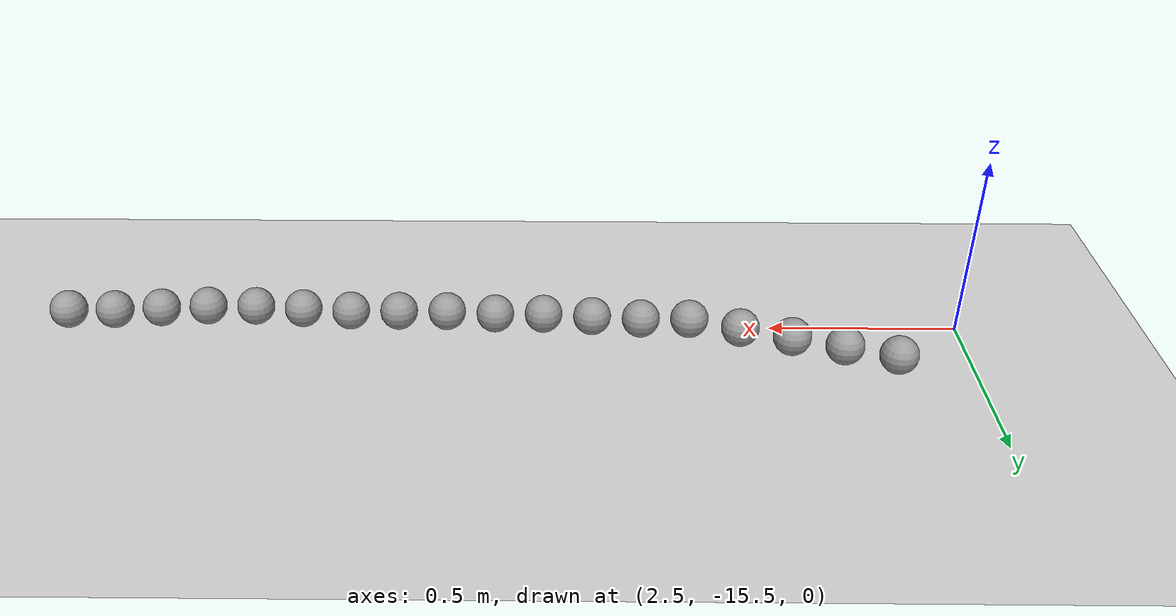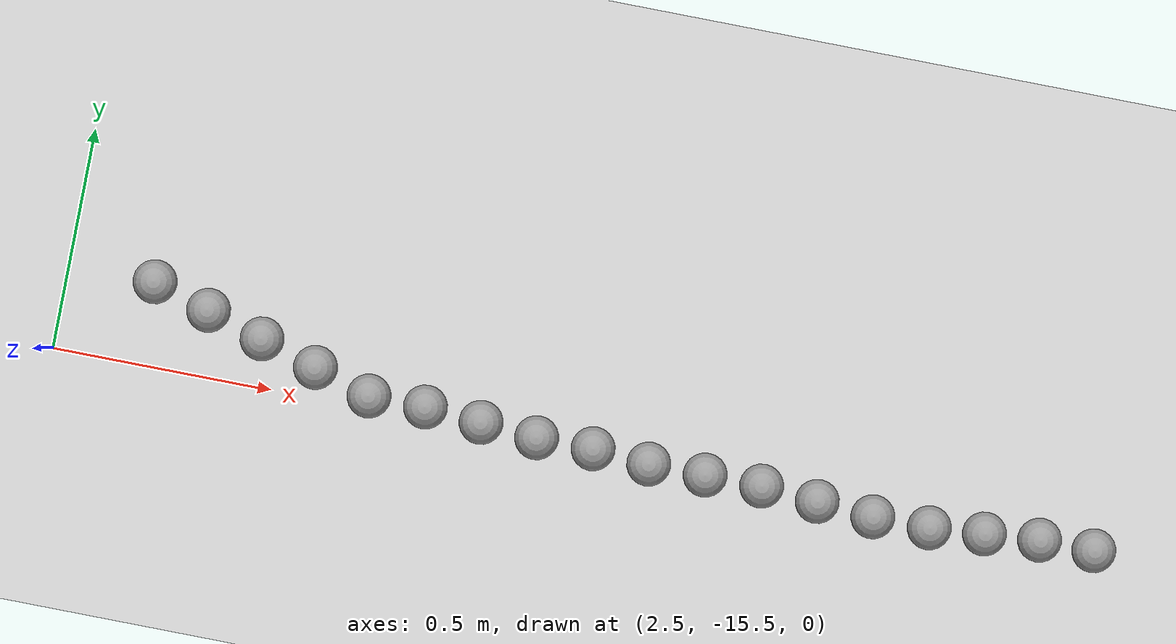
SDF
<sdf version="1.6">
 <world name="default">
  <model name="ground_plane">
   <static>1</static>
   <link name="link">
    <collision name="collision">
     <geometry><plane><normal>0 0 1</normal><size>100 100</size></plane></geometry>
     <surface><friction><ode><mu>100</mu><mu2>50</mu2></ode></friction></surface>
    </collision>
    <visual name="visual">
     <cast_shadows>0</cast_shadows>
     <geometry><plane><normal>0 0 1</normal><size>100 100</size></plane></geometry>
     <material>
      <script><uri>file://media/materials/scripts/gazebo.material</uri><name>Gazebo/Grey</name></script>
     </material>
    </visual>
   </link>
  </model>
  <model name="unit_sphere_0_557">
   <pose>4.882000 -15.500000 0.050000 0 -0 0</pose>
   <link name="link">
    <inertial>
     <mass>1</mass>
     <inertia><ixx>0.1</ixx><ixy>0</ixy><ixz>0</ixz><iyy>0.1</iyy><iyz>0</iyz><izz>0.1</izz></inertia>
    </inertial>
    <collision name="collision"><geometry><sphere><radius>0.050000</radius></sphere></geometry></collision>
    <visual name="visual">
     <geometry><sphere><radius>0.050000</radius></sphere></geometry>
     <material>
      <script><name>Gazebo/Grey</name><uri>file://media/materials/scripts/gazebo.material</uri></script>
     </material>
    </visual>
   </link>
  </model>
  <model name="unit_sphere_0_558">
   <pose>4.758000 -15.500000 0.050000 0 -0 0</pose>
   <link name="link">
    <inertial>
     <mass>1</mass>
     <inertia><ixx>0.1</ixx><ixy>0</ixy><ixz>0</ixz><iyy>0.1</iyy><iyz>0</iyz><izz>0.1</izz></inertia>
    </inertial>
    <collision name="collision"><geometry><sphere><radius>0.050000</radius></sphere></geometry></collision>
    <visual name="visual">
     <geometry><sphere><radius>0.050000</radius></sphere></geometry>
     <material>
      <script><name>Gazebo/Grey</name><uri>file://media/materials/scripts/gazebo.material</uri></script>
     </material>
    </visual>
   </link>
  </model>
  <model name="unit_sphere_0_559">
   <pose>4.634000 -15.510000 0.050000 0 -0 0</pose>
   <link name="link">
    <inertial>
     <mass>1</mass>
     <inertia><ixx>0.1</ixx><ixy>0</ixy><ixz>0</ixz><iyy>0.1</iyy><iyz>0</iyz><izz>0.1</izz></inertia>
    </inertial>
    <collision name="collision"><geometry><sphere><radius>0.050000</radius></sphere></geometry></collision>
    <visual name="visual">
     <geometry><sphere><radius>0.050000</radius></sphere></geometry>
     <material>
      <script><name>Gazebo/Grey</name><uri>file://media/materials/scripts/gazebo.material</uri></script>
     </material>
    </visual>
   </link>
  </model>
  <model name="unit_sphere_0_560">
   <pose>4.510000 -15.520000 0.050000 0 -0 0</pose>
   <link name="link">
    <inertial>
     <mass>1</mass>
     <inertia><ixx>0.1</ixx><ixy>0</ixy><ixz>0</ixz><iyy>0.1</iyy><iyz>0</iyz><izz>0.1</izz></inertia>
    </inertial>
    <collision name="collision"><geometry><sphere><radius>0.050000</radius></sphere></geometry></collision>
    <visual name="visual">
     <geometry><sphere><radius>0.050000</radius></sphere></geometry>
     <material>
      <script><name>Gazebo/Grey</name><uri>file://media/materials/scripts/gazebo.material</uri></script>
     </material>
    </visual>
   </link>
  </model>
  <model name="unit_sphere_0_561">
   <pose>4.381000 -15.520000 0.050000 0 -0 0</pose>
   <link name="link">
    <inertial>
     <mass>1</mass>
     <inertia><ixx>0.1</ixx><ixy>0</ixy><ixz>0</ixz><iyy>0.1</iyy><iyz>0</iyz><izz>0.1</izz></inertia>
    </inertial>
    <collision name="collision"><geometry><sphere><radius>0.050000</radius></sphere></geometry></collision>
    <visual name="visual">
     <geometry><sphere><radius>0.050000</radius></sphere></geometry>
     <material>
      <script><name>Gazebo/Grey</name><uri>file://media/materials/scripts/gazebo.material</uri></script>
     </material>
    </visual>
   </link>
  </model>
  <model name="unit_sphere_0_562">
   <pose>4.252000 -15.510000 0.050000 0 -0 0</pose>
   <link name="link">
    <inertial>
     <mass>1</mass>
     <inertia><ixx>0.1</ixx><ixy>0</ixy><ixz>0</ixz><iyy>0.1</iyy><iyz>0</iyz><izz>0.1</izz></inertia>
    </inertial>
    <collision name="collision"><geometry><sphere><radius>0.050000</radius></sphere></geometry></collision>
    <visual name="visual">
     <geometry><sphere><radius>0.050000</radius></sphere></geometry>
     <material>
      <script><name>Gazebo/Grey</name><uri>file://media/materials/scripts/gazebo.material</uri></script>
     </material>
    </visual>
   </link>
  </model>
  <model name="unit_sphere_0_563">
   <pose>4.123000 -15.500000 0.050000 0 -0 0</pose>
   <link name="link">
    <inertial>
     <mass>1</mass>
     <inertia><ixx>0.1</ixx><ixy>0</ixy><ixz>0</ixz><iyy>0.1</iyy><iyz>0</iyz><izz>0.1</izz></inertia>
    </inertial>
    <collision name="collision"><geometry><sphere><radius>0.050000</radius></sphere></geometry></collision>
    <visual name="visual">
     <geometry><sphere><radius>0.050000</radius></sphere></geometry>
     <material>
      <script><name>Gazebo/Grey</name><uri>file://media/materials/scripts/gazebo.material</uri></script>
     </material>
    </visual>
   </link>
  </model>
  <model name="unit_sphere_0_564">
   <pose>3.994000 -15.500000 0.050000 0 -0 0</pose>
   <link name="link">
    <inertial>
     <mass>1</mass>
     <inertia><ixx>0.1</ixx><ixy>0</ixy><ixz>0</ixz><iyy>0.1</iyy><iyz>0</iyz><izz>0.1</izz></inertia>
    </inertial>
    <collision name="collision"><geometry><sphere><radius>0.050000</radius></sphere></geometry></collision>
    <visual name="visual">
     <geometry><sphere><radius>0.050000</radius></sphere></geometry>
     <material>
      <script><name>Gazebo/Grey</name><uri>file://media/materials/scripts/gazebo.material</uri></script>
     </material>
    </visual>
   </link>
  </model>
  <model name="unit_sphere_0_565">
   <pose>3.865000 -15.500000 0.050000 0 -0 0</pose>
   <link name="link">
    <inertial>
     <mass>1</mass>
     <inertia><ixx>0.1</ixx><ixy>0</ixy><ixz>0</ixz><iyy>0.1</iyy><iyz>0</iyz><izz>0.1</izz></inertia>
    </inertial>
    <collision name="collision"><geometry><sphere><radius>0.050000</radius></sphere></geometry></collision>
    <visual name="visual">
     <geometry><sphere><radius>0.050000</radius></sphere></geometry>
     <material>
      <script><name>Gazebo/Grey</name><uri>file://media/materials/scripts/gazebo.material</uri></script>
     </material>
    </visual>
   </link>
  </model>
  <model name="unit_sphere_0_566">
   <pose>3.736000 -15.490000 0.050000 0 -0 0</pose>
   <link name="link">
    <inertial>
     <mass>1</mass>
     <inertia><ixx>0.1</ixx><ixy>0</ixy><ixz>0</ixz><iyy>0.1</iyy><iyz>0</iyz><izz>0.1</izz></inertia>
    </inertial>
    <collision name="collision"><geometry><sphere><radius>0.050000</radius></sphere></geometry></collision>
    <visual name="visual">
     <geometry><sphere><radius>0.050000</radius></sphere></geometry>
     <material>
      <script><name>Gazebo/Grey</name><uri>file://media/materials/scripts/gazebo.material</uri></script>
     </material>
    </visual>
   </link>
  </model>
  <model name="unit_sphere_0_567">
   <pose>3.607000 -15.490000 0.050000 0 -0 0</pose>
   <link name="link">
    <inertial>
     <mass>1</mass>
     <inertia><ixx>0.1</ixx><ixy>0</ixy><ixz>0</ixz><iyy>0.1</iyy><iyz>0</iyz><izz>0.1</izz></inertia>
    </inertial>
    <collision name="collision"><geometry><sphere><radius>0.050000</radius></sphere></geometry></collision>
    <visual name="visual">
     <geometry><sphere><radius>0.050000</radius></sphere></geometry>
     <material>
      <script><name>Gazebo/Grey</name><uri>file://media/materials/scripts/gazebo.material</uri></script>
     </material>
    </visual>
   </link>
  </model>
  <model name="unit_sphere_0_568">
   <pose>3.478000 -15.480000 0.050000 0 -0 0</pose>
   <link name="link">
    <inertial>
     <mass>1</mass>
     <inertia><ixx>0.1</ixx><ixy>0</ixy><ixz>0</ixz><iyy>0.1</iyy><iyz>0</iyz><izz>0.1</izz></inertia>
    </inertial>
    <collision name="collision"><geometry><sphere><radius>0.050000</radius></sphere></geometry></collision>
    <visual name="visual">
     <geometry><sphere><radius>0.050000</radius></sphere></geometry>
     <material>
      <script><name>Gazebo/Grey</name><uri>file://media/materials/scripts/gazebo.material</uri></script>
     </material>
    </visual>
   </link>
  </model>
  <model name="unit_sphere_0_569">
   <pose>3.349000 -15.470000 0.050000 0 -0 0</pose>
   <link name="link">
    <inertial>
     <mass>1</mass>
     <inertia><ixx>0.1</ixx><ixy>0</ixy><ixz>0</ixz><iyy>0.1</iyy><iyz>0</iyz><izz>0.1</izz></inertia>
    </inertial>
    <collision name="collision"><geometry><sphere><radius>0.050000</radius></sphere></geometry></collision>
    <visual name="visual">
     <geometry><sphere><radius>0.050000</radius></sphere></geometry>
     <material>
      <script><name>Gazebo/Grey</name><uri>file://media/materials/scripts/gazebo.material</uri></script>
     </material>
    </visual>
   </link>
  </model>
  <model name="unit_sphere_0_570">
   <pose>3.220000 -15.470000 0.050000 0 -0 0</pose>
   <link name="link">
    <inertial>
     <mass>1</mass>
     <inertia><ixx>0.1</ixx><ixy>0</ixy><ixz>0</ixz><iyy>0.1</iyy><iyz>0</iyz><izz>0.1</izz></inertia>
    </inertial>
    <collision name="collision"><geometry><sphere><radius>0.050000</radius></sphere></geometry></collision>
    <visual name="visual">
     <geometry><sphere><radius>0.050000</radius></sphere></geometry>
     <material>
      <script><name>Gazebo/Grey</name><uri>file://media/materials/scripts/gazebo.material</uri></script>
     </material>
    </visual>
   </link>
  </model>
  <model name="unit_sphere_0_571">
   <pose>3.090000 -15.430000 0.050000 0 -0 0</pose>
   <link name="link">
    <inertial>
     <mass>1</mass>
     <inertia><ixx>0.1</ixx><ixy>0</ixy><ixz>0</ixz><iyy>0.1</iyy><iyz>0</iyz><izz>0.1</izz></inertia>
    </inertial>
    <collision name="collision"><geometry><sphere><radius>0.050000</radius></sphere></geometry></collision>
    <visual name="visual">
     <geometry><sphere><radius>0.050000</radius></sphere></geometry>
     <material>
      <script><name>Gazebo/Grey</name><uri>file://media/materials/scripts/gazebo.material</uri></script>
     </material>
    </visual>
   </link>
  </model>
  <model name="unit_sphere_0_572">
   <pose>2.960000 -15.390000 0.050000 0 -0 0</pose>
   <link name="link">
    <inertial>
     <mass>1</mass>
     <inertia><ixx>0.1</ixx><ixy>0</ixy><ixz>0</ixz><iyy>0.1</iyy><iyz>0</iyz><izz>0.1</izz></inertia>
    </inertial>
    <collision name="collision"><geometry><sphere><radius>0.050000</radius></sphere></geometry></collision>
    <visual name="visual">
     <geometry><sphere><radius>0.050000</radius></sphere></geometry>
     <material>
      <script><name>Gazebo/Grey</name><uri>file://media/materials/scripts/gazebo.material</uri></script>
     </material>
    </visual>
   </link>
  </model>
  <model name="unit_sphere_0_573">
   <pose>2.830000 -15.350000 0.050000 0 -0 0</pose>
   <link name="link">
    <inertial>
     <mass>1</mass>
     <inertia><ixx>0.1</ixx><ixy>0</ixy><ixz>0</ixz><iyy>0.1</iyy><iyz>0</iyz><izz>0.1</izz></inertia>
    </inertial>
    <collision name="collision"><geometry><sphere><radius>0.050000</radius></sphere></geometry></collision>
    <visual name="visual">
     <geometry><sphere><radius>0.050000</radius></sphere></geometry>
     <material>
      <script><name>Gazebo/Grey</name><uri>file://media/materials/scripts/gazebo.material</uri></script>
     </material>
    </visual>
   </link>
  </model>
  <model name="unit_sphere_0_574">
   <pose>2.700000 -15.310000 0.050000 0 -0 0</pose>
   <link name="link">
    <inertial>
     <mass>1</mass>
     <inertia><ixx>0.1</ixx><ixy>0</ixy><ixz>0</ixz><iyy>0.1</iyy><iyz>0</iyz><izz>0.1</izz></inertia>
    </inertial>
    <collision name="collision"><geometry><sphere><radius>0.050000</radius></sphere></geometry></collision>
    <visual name="visual">
     <geometry><sphere><radius>0.050000</radius></sphere></geometry>
     <material>
      <script><name>Gazebo/Grey</name><uri>file://media/materials/scripts/gazebo.material</uri></script>
     </material>
    </visual>
   </link>
  </model>
 </world>
</sdf>
